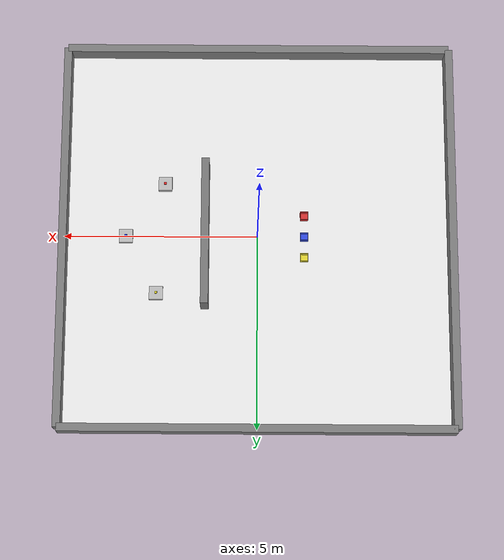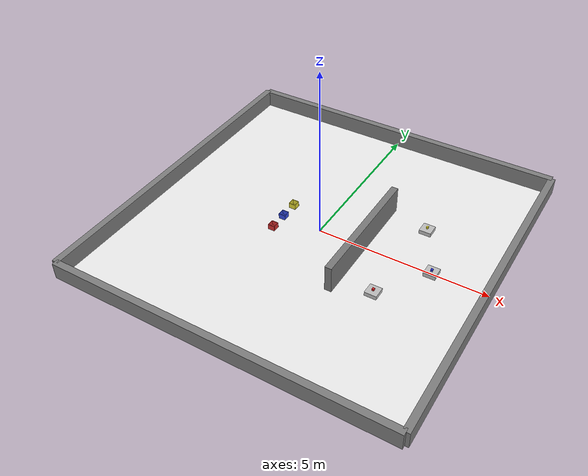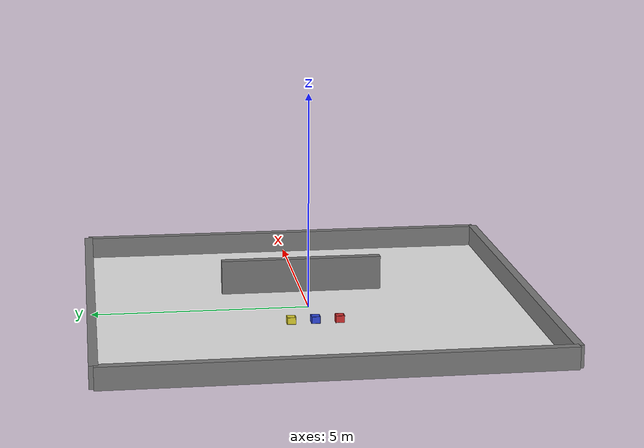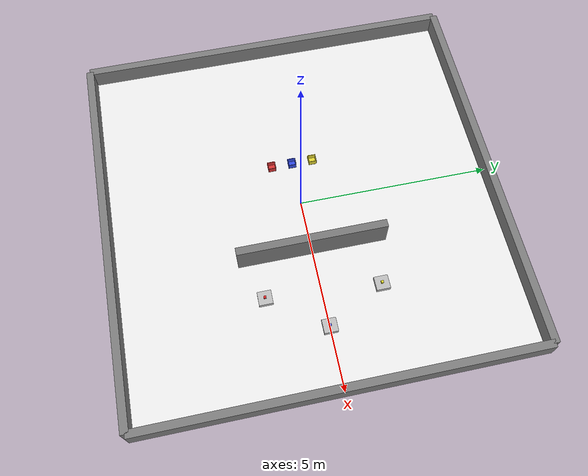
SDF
<?xml version="1.0"?>
<sdf version="1.9">
  <world name="pick_place_arena">
    <gravity>0 0 -9.81</gravity>

    <plugin filename="gz-sim-physics-system" name="gz::sim::systems::Physics"/>
    <plugin filename="gz-sim-user-commands-system" name="gz::sim::systems::UserCommands"/>
    <plugin filename="gz-sim-scene-broadcaster-system" name="gz::sim::systems::SceneBroadcaster"/>
    <plugin filename="gz-sim-sensors-system" name="gz::sim::systems::Sensors">
      <render_engine>ogre2</render_engine>
    </plugin>

    <light name="sun" type="directional">
      <cast_shadows>true</cast_shadows>
      <pose>0 0 10 0 0 0</pose>
      <diffuse>0.9 0.9 0.9 1</diffuse>
      <specular>0.2 0.2 0.2 1</specular>
      <attenuation>
        <range>1000</range>
        <constant>0.9</constant>
        <linear>0.01</linear>
        <quadratic>0.001</quadratic>
      </attenuation>
      <direction>-0.45 0.3 -0.85</direction>
    </light>

    <model name="floor">
      <static>true</static>
      <link name="floor_link">
        <pose>0 0 -0.01 0 0 0</pose>
        <collision name="collision">
          <geometry>
            <box>
              <size>10 10 0.02</size>
            </box>
          </geometry>
          <surface>
            <friction>
              <ode>
                <mu>1.0</mu>
                <mu2>1.0</mu2>
              </ode>
            </friction>
          </surface>
        </collision>
        <visual name="visual">
          <geometry>
            <box>
              <size>10 10 0.02</size>
            </box>
          </geometry>
          <material>
            <ambient>0.92 0.92 0.92 1</ambient>
            <diffuse>0.94 0.94 0.94 1</diffuse>
          </material>
        </visual>
      </link>
    </model>

    <model name="wall_north">
      <static>true</static>
      <link name="link">
        <pose>0 5.0 0.25 0 0 0</pose>
        <collision name="collision">
          <geometry>
            <box>
              <size>10 0.2 0.5</size>
            </box>
          </geometry>
        </collision>
        <visual name="visual">
          <geometry>
            <box>
              <size>10 0.2 0.5</size>
            </box>
          </geometry>
          <material>
            <ambient>0.4 0.4 0.4 1</ambient>
            <diffuse>0.5 0.5 0.5 1</diffuse>
          </material>
        </visual>
      </link>
    </model>

    <model name="wall_south">
      <static>true</static>
      <link name="link">
        <pose>0 -5.0 0.25 0 0 0</pose>
        <collision name="collision">
          <geometry>
            <box>
              <size>10 0.2 0.5</size>
            </box>
          </geometry>
        </collision>
        <visual name="visual">
          <geometry>
            <box>
              <size>10 0.2 0.5</size>
            </box>
          </geometry>
          <material>
            <ambient>0.4 0.4 0.4 1</ambient>
            <diffuse>0.5 0.5 0.5 1</diffuse>
          </material>
        </visual>
      </link>
    </model>

    <model name="wall_east">
      <static>true</static>
      <link name="link">
        <pose>5.0 0 0.25 0 0 0</pose>
        <collision name="collision">
          <geometry>
            <box>
              <size>0.2 10 0.5</size>
            </box>
          </geometry>
        </collision>
        <visual name="visual">
          <geometry>
            <box>
              <size>0.2 10 0.5</size>
            </box>
          </geometry>
          <material>
            <ambient>0.4 0.4 0.4 1</ambient>
            <diffuse>0.5 0.5 0.5 1</diffuse>
          </material>
        </visual>
      </link>
    </model>

    <model name="wall_west">
      <static>true</static>
      <link name="link">
        <pose>-5.0 0 0.25 0 0 0</pose>
        <collision name="collision">
          <geometry>
            <box>
              <size>0.2 10 0.5</size>
            </box>
          </geometry>
        </collision>
        <visual name="visual">
          <geometry>
            <box>
              <size>0.2 10 0.5</size>
            </box>
          </geometry>
          <material>
            <ambient>0.4 0.4 0.4 1</ambient>
            <diffuse>0.5 0.5 0.5 1</diffuse>
          </material>
        </visual>
      </link>
    </model>

    <model name="wall_block_screen">
      <static>true</static>
      <link name="link">
        <pose>1.35 0 0.4 0 0 0</pose>
        <collision name="collision">
          <geometry>
            <box>
              <size>0.2 3.8 0.8</size>
            </box>
          </geometry>
        </collision>
        <visual name="visual">
          <geometry>
            <box>
              <size>0.2 3.8 0.8</size>
            </box>
          </geometry>
          <material>
            <ambient>0.38 0.38 0.38 1</ambient>
            <diffuse>0.48 0.48 0.48 1</diffuse>
          </material>
        </visual>
      </link>
    </model>

    <include>
      <uri>model://bin_red</uri>
      <name>bin_red_1</name>
      <pose>-1.2 -0.55 0 0 0 0</pose>
    </include>
    <include>
      <uri>model://bin_blue</uri>
      <name>bin_blue_1</name>
      <pose>-1.2 0.0 0 0 0 0</pose>
    </include>
    <include>
      <uri>model://bin_yellow</uri>
      <name>bin_yellow_1</name>
      <pose>-1.2 0.55 0 0 0 0</pose>
    </include>

    <include>
      <uri>model://platform</uri>
      <name>platform_red</name>
      <pose>2.4 -1.4 0 0 0 0</pose>
    </include>
    <include>
      <uri>model://platform</uri>
      <name>platform_blue</name>
      <pose>3.4 0.0 0 0 0 0</pose>
    </include>
    <include>
      <uri>model://platform</uri>
      <name>platform_yellow</name>
      <pose>2.6 1.5 0 0 0 0</pose>
    </include>

    <include>
      <uri>model://block_red</uri>
      <name>block_red_1</name>
      <pose>2.4 -1.4 0.12 0 0 0</pose>
    </include>
    <include>
      <uri>model://block_blue</uri>
      <name>block_blue_1</name>
      <pose>3.4 0.0 0.12 0 0 0</pose>
    </include>
    <include>
      <uri>model://block_yellow</uri>
      <name>block_yellow_1</name>
      <pose>2.6 1.5 0.12 0 0 0</pose>
    </include>
  </world>
</sdf>

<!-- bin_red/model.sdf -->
<sdf version="1.9">
  <model name="bin_red">
    <static>true</static>
    <link name="link">
      <pose>0 0 0.08 0 0 0</pose>
      <collision name="bottom_collision">
        <pose>0 0 -0.075 0 0 0</pose>
        <geometry>
          <box>
            <size>0.205 0.205 0.01</size>
          </box>
        </geometry>
      </collision>
      <collision name="north_wall_collision">
        <pose>0 0.0975 0 0 0 0</pose>
        <geometry>
          <box>
            <size>0.205 0.01 0.16</size>
          </box>
        </geometry>
      </collision>
      <collision name="south_wall_collision">
        <pose>0 -0.0975 0 0 0 0</pose>
        <geometry>
          <box>
            <size>0.205 0.01 0.16</size>
          </box>
        </geometry>
      </collision>
      <collision name="east_wall_collision">
        <pose>0.0975 0 0 0 0 0</pose>
        <geometry>
          <box>
            <size>0.01 0.185 0.16</size>
          </box>
        </geometry>
      </collision>
      <collision name="west_wall_collision">
        <pose>-0.0975 0 0 0 0 0</pose>
        <geometry>
          <box>
            <size>0.01 0.185 0.16</size>
          </box>
        </geometry>
      </collision>
      <visual name="bottom_visual">
        <pose>0 0 -0.075 0 0 0</pose>
        <geometry>
          <box>
            <size>0.205 0.205 0.01</size>
          </box>
        </geometry>
        <material>
          <ambient>0.7 0.1 0.1 1</ambient>
          <diffuse>0.85 0.2 0.2 1</diffuse>
        </material>
      </visual>
      <visual name="north_wall_visual">
        <pose>0 0.0975 0 0 0 0</pose>
        <geometry>
          <box>
            <size>0.205 0.01 0.16</size>
          </box>
        </geometry>
        <material>
          <ambient>0.7 0.1 0.1 1</ambient>
          <diffuse>0.85 0.2 0.2 1</diffuse>
        </material>
      </visual>
      <visual name="south_wall_visual">
        <pose>0 -0.0975 0 0 0 0</pose>
        <geometry>
          <box>
            <size>0.205 0.01 0.16</size>
          </box>
        </geometry>
        <material>
          <ambient>0.7 0.1 0.1 1</ambient>
          <diffuse>0.85 0.2 0.2 1</diffuse>
        </material>
      </visual>
      <visual name="east_wall_visual">
        <pose>0.0975 0 0 0 0 0</pose>
        <geometry>
          <box>
            <size>0.01 0.185 0.16</size>
          </box>
        </geometry>
        <material>
          <ambient>0.7 0.1 0.1 1</ambient>
          <diffuse>0.85 0.2 0.2 1</diffuse>
        </material>
      </visual>
      <visual name="west_wall_visual">
        <pose>-0.0975 0 0 0 0 0</pose>
        <geometry>
          <box>
            <size>0.01 0.185 0.16</size>
          </box>
        </geometry>
        <material>
          <ambient>0.7 0.1 0.1 1</ambient>
          <diffuse>0.85 0.2 0.2 1</diffuse>
        </material>
      </visual>
    </link>
    <plugin
      filename="libgz-sim-pose-publisher-system.so"
      name="gz::sim::systems::PosePublisher">
      <publish_link_pose>false</publish_link_pose>
      <publish_model_pose>true</publish_model_pose>
      <use_pose_vector_msg>true</use_pose_vector_msg>
      <update_frequency>10</update_frequency>
    </plugin>
  </model>
</sdf>

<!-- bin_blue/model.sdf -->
<sdf version="1.9">
  <model name="bin_blue">
    <static>true</static>
    <link name="link">
      <pose>0 0 0.08 0 0 0</pose>
      <collision name="bottom_collision">
        <pose>0 0 -0.075 0 0 0</pose>
        <geometry>
          <box>
            <size>0.205 0.205 0.01</size>
          </box>
        </geometry>
      </collision>
      <collision name="north_wall_collision">
        <pose>0 0.0975 0 0 0 0</pose>
        <geometry>
          <box>
            <size>0.205 0.01 0.16</size>
          </box>
        </geometry>
      </collision>
      <collision name="south_wall_collision">
        <pose>0 -0.0975 0 0 0 0</pose>
        <geometry>
          <box>
            <size>0.205 0.01 0.16</size>
          </box>
        </geometry>
      </collision>
      <collision name="east_wall_collision">
        <pose>0.0975 0 0 0 0 0</pose>
        <geometry>
          <box>
            <size>0.01 0.185 0.16</size>
          </box>
        </geometry>
      </collision>
      <collision name="west_wall_collision">
        <pose>-0.0975 0 0 0 0 0</pose>
        <geometry>
          <box>
            <size>0.01 0.185 0.16</size>
          </box>
        </geometry>
      </collision>
      <visual name="bottom_visual">
        <pose>0 0 -0.075 0 0 0</pose>
        <geometry>
          <box>
            <size>0.205 0.205 0.01</size>
          </box>
        </geometry>
        <material>
          <ambient>0.1 0.1 0.7 1</ambient>
          <diffuse>0.2 0.3 0.9 1</diffuse>
        </material>
      </visual>
      <visual name="north_wall_visual">
        <pose>0 0.0975 0 0 0 0</pose>
        <geometry>
          <box>
            <size>0.205 0.01 0.16</size>
          </box>
        </geometry>
        <material>
          <ambient>0.1 0.1 0.7 1</ambient>
          <diffuse>0.2 0.3 0.9 1</diffuse>
        </material>
      </visual>
      <visual name="south_wall_visual">
        <pose>0 -0.0975 0 0 0 0</pose>
        <geometry>
          <box>
            <size>0.205 0.01 0.16</size>
          </box>
        </geometry>
        <material>
          <ambient>0.1 0.1 0.7 1</ambient>
          <diffuse>0.2 0.3 0.9 1</diffuse>
        </material>
      </visual>
      <visual name="east_wall_visual">
        <pose>0.0975 0 0 0 0 0</pose>
        <geometry>
          <box>
            <size>0.01 0.185 0.16</size>
          </box>
        </geometry>
        <material>
          <ambient>0.1 0.1 0.7 1</ambient>
          <diffuse>0.2 0.3 0.9 1</diffuse>
        </material>
      </visual>
      <visual name="west_wall_visual">
        <pose>-0.0975 0 0 0 0 0</pose>
        <geometry>
          <box>
            <size>0.01 0.185 0.16</size>
          </box>
        </geometry>
        <material>
          <ambient>0.1 0.1 0.7 1</ambient>
          <diffuse>0.2 0.3 0.9 1</diffuse>
        </material>
      </visual>
    </link>
    <plugin
      filename="libgz-sim-pose-publisher-system.so"
      name="gz::sim::systems::PosePublisher">
      <publish_link_pose>false</publish_link_pose>
      <publish_model_pose>true</publish_model_pose>
      <use_pose_vector_msg>true</use_pose_vector_msg>
      <update_frequency>10</update_frequency>
    </plugin>
  </model>
</sdf>

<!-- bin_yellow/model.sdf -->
<sdf version="1.9">
  <model name="bin_yellow">
    <static>true</static>
    <link name="link">
      <pose>0 0 0.08 0 0 0</pose>
      <collision name="bottom_collision">
        <pose>0 0 -0.075 0 0 0</pose>
        <geometry>
          <box>
            <size>0.205 0.205 0.01</size>
          </box>
        </geometry>
      </collision>
      <collision name="north_wall_collision">
        <pose>0 0.0975 0 0 0 0</pose>
        <geometry>
          <box>
            <size>0.205 0.01 0.16</size>
          </box>
        </geometry>
      </collision>
      <collision name="south_wall_collision">
        <pose>0 -0.0975 0 0 0 0</pose>
        <geometry>
          <box>
            <size>0.205 0.01 0.16</size>
          </box>
        </geometry>
      </collision>
      <collision name="east_wall_collision">
        <pose>0.0975 0 0 0 0 0</pose>
        <geometry>
          <box>
            <size>0.01 0.185 0.16</size>
          </box>
        </geometry>
      </collision>
      <collision name="west_wall_collision">
        <pose>-0.0975 0 0 0 0 0</pose>
        <geometry>
          <box>
            <size>0.01 0.185 0.16</size>
          </box>
        </geometry>
      </collision>
      <visual name="bottom_visual">
        <pose>0 0 -0.075 0 0 0</pose>
        <geometry>
          <box>
            <size>0.205 0.205 0.01</size>
          </box>
        </geometry>
        <material>
          <ambient>0.75 0.75 0.1 1</ambient>
          <diffuse>0.9 0.85 0.2 1</diffuse>
        </material>
      </visual>
      <visual name="north_wall_visual">
        <pose>0 0.0975 0 0 0 0</pose>
        <geometry>
          <box>
            <size>0.205 0.01 0.16</size>
          </box>
        </geometry>
        <material>
          <ambient>0.75 0.75 0.1 1</ambient>
          <diffuse>0.9 0.85 0.2 1</diffuse>
        </material>
      </visual>
      <visual name="south_wall_visual">
        <pose>0 -0.0975 0 0 0 0</pose>
        <geometry>
          <box>
            <size>0.205 0.01 0.16</size>
          </box>
        </geometry>
        <material>
          <ambient>0.75 0.75 0.1 1</ambient>
          <diffuse>0.9 0.85 0.2 1</diffuse>
        </material>
      </visual>
      <visual name="east_wall_visual">
        <pose>0.0975 0 0 0 0 0</pose>
        <geometry>
          <box>
            <size>0.01 0.185 0.16</size>
          </box>
        </geometry>
        <material>
          <ambient>0.75 0.75 0.1 1</ambient>
          <diffuse>0.9 0.85 0.2 1</diffuse>
        </material>
      </visual>
      <visual name="west_wall_visual">
        <pose>-0.0975 0 0 0 0 0</pose>
        <geometry>
          <box>
            <size>0.01 0.185 0.16</size>
          </box>
        </geometry>
        <material>
          <ambient>0.75 0.75 0.1 1</ambient>
          <diffuse>0.9 0.85 0.2 1</diffuse>
        </material>
      </visual>
    </link>
    <plugin
      filename="libgz-sim-pose-publisher-system.so"
      name="gz::sim::systems::PosePublisher">
      <publish_link_pose>false</publish_link_pose>
      <publish_model_pose>true</publish_model_pose>
      <use_pose_vector_msg>true</use_pose_vector_msg>
      <update_frequency>10</update_frequency>
    </plugin>
  </model>
</sdf>

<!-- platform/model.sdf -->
<sdf version="1.9">
  <model name="platform">
    <static>true</static>
    <link name="link">
      <pose>0 0 0.06 0 0 0</pose>
      <collision name="collision">
        <geometry>
          <box>
            <size>0.35 0.35 0.12</size>
          </box>
        </geometry>
      </collision>
      <visual name="visual">
        <geometry>
          <box>
            <size>0.35 0.35 0.12</size>
          </box>
        </geometry>
        <material>
          <ambient>0.7 0.7 0.7 1</ambient>
          <diffuse>0.75 0.75 0.75 1</diffuse>
        </material>
      </visual>
    </link>
    <plugin
      filename="libgz-sim-pose-publisher-system.so"
      name="gz::sim::systems::PosePublisher">
      <publish_link_pose>false</publish_link_pose>
      <publish_model_pose>true</publish_model_pose>
      <use_pose_vector_msg>true</use_pose_vector_msg>
      <update_frequency>10</update_frequency>
    </plugin>
  </model>
</sdf>

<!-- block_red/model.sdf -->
<sdf version="1.9">
  <model name="block_red">
    <static>false</static>
    <allow_auto_disable>false</allow_auto_disable>
    <link name="link">
      <pose>0 0 0.03 0 0 0</pose>
      <inertial>
        <mass>0.25</mass>
        <inertia>
          <ixx>0.00015</ixx>
          <iyy>0.00015</iyy>
          <izz>0.00015</izz>
          <ixy>0.0</ixy>
          <ixz>0.0</ixz>
          <iyz>0.0</iyz>
        </inertia>
      </inertial>
      <collision name="collision">
        <geometry>
          <box>
            <size>0.06 0.06 0.06</size>
          </box>
        </geometry>
      </collision>
      <visual name="visual">
        <geometry>
          <box>
            <size>0.06 0.06 0.06</size>
          </box>
        </geometry>
        <material>
          <ambient>0.8 0.1 0.1 1</ambient>
          <diffuse>0.9 0.15 0.15 1</diffuse>
        </material>
      </visual>
    </link>
    <plugin
      filename="libgz-sim-pose-publisher-system.so"
      name="gz::sim::systems::PosePublisher">
      <publish_link_pose>false</publish_link_pose>
      <publish_model_pose>true</publish_model_pose>
      <use_pose_vector_msg>true</use_pose_vector_msg>
      <update_frequency>10</update_frequency>
    </plugin>
  </model>
</sdf>

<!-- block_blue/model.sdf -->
<sdf version="1.9">
  <model name="block_blue">
    <static>false</static>
    <allow_auto_disable>false</allow_auto_disable>
    <link name="link">
      <pose>0 0 0.03 0 0 0</pose>
      <inertial>
        <mass>0.25</mass>
        <inertia>
          <ixx>0.00015</ixx>
          <iyy>0.00015</iyy>
          <izz>0.00015</izz>
          <ixy>0.0</ixy>
          <ixz>0.0</ixz>
          <iyz>0.0</iyz>
        </inertia>
      </inertial>
      <collision name="collision">
        <geometry>
          <box>
            <size>0.06 0.06 0.06</size>
          </box>
        </geometry>
      </collision>
      <visual name="visual">
        <geometry>
          <box>
            <size>0.06 0.06 0.06</size>
          </box>
        </geometry>
        <material>
          <ambient>0.1 0.1 0.8 1</ambient>
          <diffuse>0.15 0.2 0.9 1</diffuse>
        </material>
      </visual>
    </link>
    <plugin
      filename="libgz-sim-pose-publisher-system.so"
      name="gz::sim::systems::PosePublisher">
      <publish_link_pose>false</publish_link_pose>
      <publish_model_pose>true</publish_model_pose>
      <use_pose_vector_msg>true</use_pose_vector_msg>
      <update_frequency>10</update_frequency>
    </plugin>
  </model>
</sdf>

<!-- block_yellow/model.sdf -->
<sdf version="1.9">
  <model name="block_yellow">
    <static>false</static>
    <allow_auto_disable>false</allow_auto_disable>
    <link name="link">
      <pose>0 0 0.03 0 0 0</pose>
      <inertial>
        <mass>0.25</mass>
        <inertia>
          <ixx>0.00015</ixx>
          <iyy>0.00015</iyy>
          <izz>0.00015</izz>
          <ixy>0.0</ixy>
          <ixz>0.0</ixz>
          <iyz>0.0</iyz>
        </inertia>
      </inertial>
      <collision name="collision">
        <geometry>
          <box>
            <size>0.06 0.06 0.06</size>
          </box>
        </geometry>
      </collision>
      <visual name="visual">
        <geometry>
          <box>
            <size>0.06 0.06 0.06</size>
          </box>
        </geometry>
        <material>
          <ambient>0.8 0.8 0.1 1</ambient>
          <diffuse>0.9 0.85 0.15 1</diffuse>
        </material>
      </visual>
    </link>
    <plugin
      filename="libgz-sim-pose-publisher-system.so"
      name="gz::sim::systems::PosePublisher">
      <publish_link_pose>false</publish_link_pose>
      <publish_model_pose>true</publish_model_pose>
      <use_pose_vector_msg>true</use_pose_vector_msg>
      <update_frequency>10</update_frequency>
    </plugin>
  </model>
</sdf>
